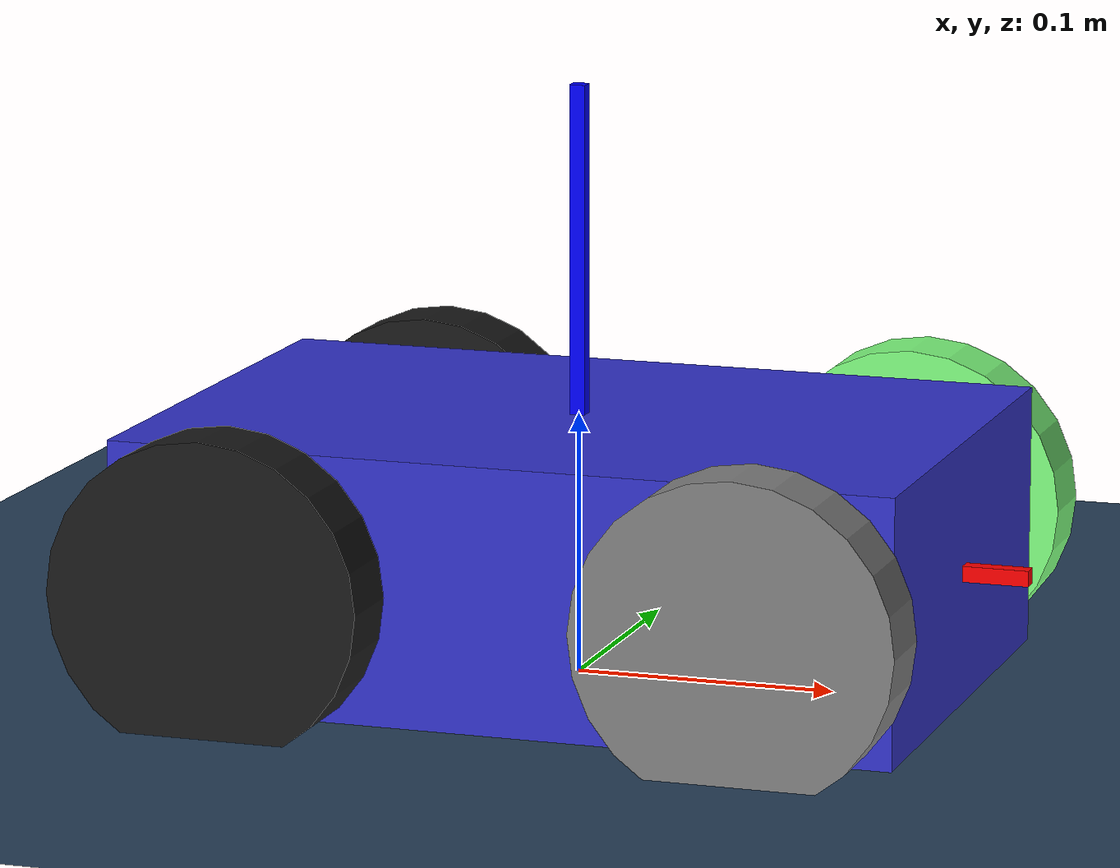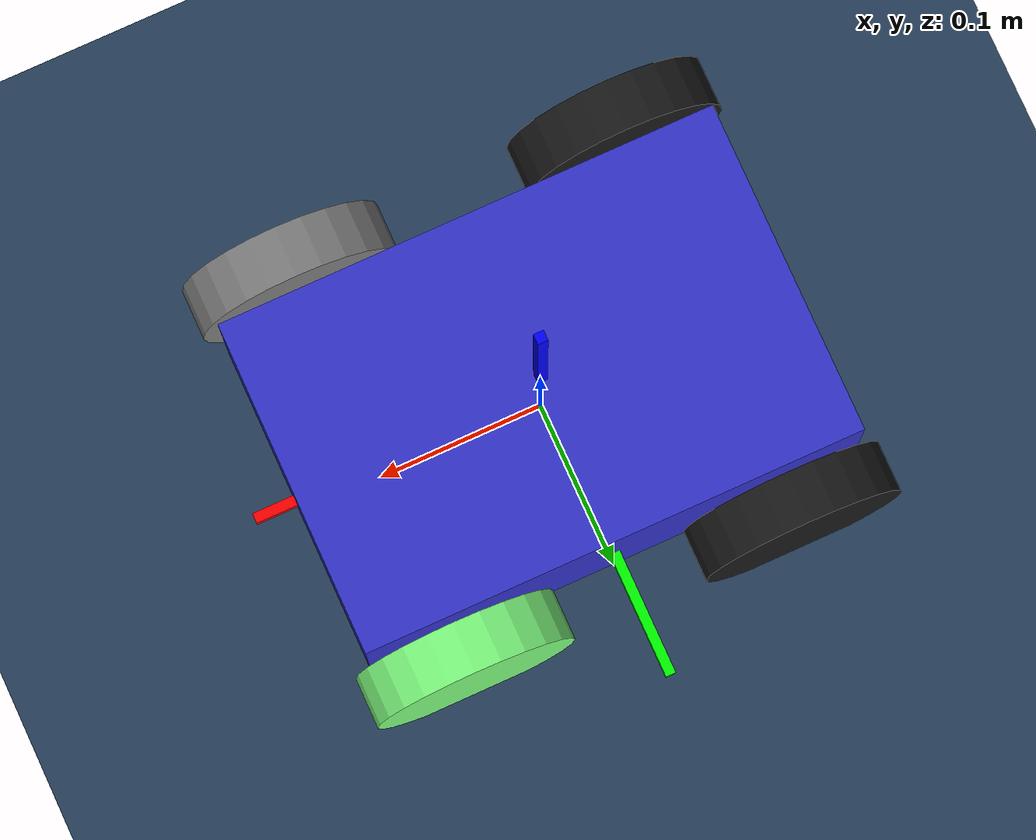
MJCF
<mujoco model="robot scene">

    <include file="base.xml"/>

    <statistic center="0 0 0.8" extent="2"/>

    <visual>
        <headlight diffuse="0.6 0.6 0.6" ambient="0.3 0.3 0.3" specular="0 0 0"/>
        <rgba haze="0.15 0.25 0.35 1"/>
        <global azimuth="120" elevation="-20"/>
    </visual>

    <asset>
        <texture type="skybox" builtin="gradient" rgb1="0.3 0.5 0.7" rgb2="0 0 0" width="512" height="3072"/>
        <texture type="2d" name="groundplane" builtin="checker" mark="edge" rgb1="0.2 0.3 0.4" rgb2="0.1 0.2 0.3"
                 markrgb="0.8 0.8 0.8" width="300" height="300"/>
        <material name="groundplane" texture="groundplane" texuniform="true" texrepeat="5 5" reflectance="0.2"/>
    </asset>

    <worldbody>
        <light pos="1 -1 1.5" dir="-1 1 -1" diffuse="0.5 0.5 0.5" directional="true"/>
        <geom name="floor" size="0 0 0.05" type="plane" material="groundplane"/>

        <body mocap="true" name="mocap" pos="0 0  0.05">
            <site pos="0 0 0.075" size="0.003 0.003 0.1" type="box" name="mocap_left_site1" rgba="0 0 1 1"/>
            <site pos="0 0.075 0" size="0.003 0.1 0.003" type="box" name="mocap_left_site2" rgba="0 1 0 1"/>
            <site pos="0.075 0 0" size="0.1 0.003 0.003" type="box" name="mocap_left_site3" rgba="1 0 0 1"/>
        </body>
    </worldbody>

    <equality>
        <weld body1="mocap" body2="base"/>
    </equality>

</mujoco>

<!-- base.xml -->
<mujoco model="4_wheel_robot_mocap">

  <compiler angle="radian" coordinate="local"/>
  <option timestep="0.01" gravity="0 0 -9.81"/>

  <asset>
  <texture name="wheel_texture" type="2d" builtin="checker" width="64" height="64"
           rgb1="0 0 0" rgb2="1 1 1" />
  <material name="wheel_mat" texture="wheel_texture" texrepeat="10 1"/>
  <texture name="wheel_texture2" type="2d" builtin="checker" width="64" height="64"
           rgb1="0 1 0" rgb2="1 2 1" />
  <material name="wheel_mat2" texture="wheel_texture2" texrepeat="10 1"/>
  </asset>

  <worldbody>

    <body name="base" pos="0 0 0.05">
      <joint name="base_free_joint" type="free"/>
      <geom type="box" size="0.15 0.1 0.05" rgba="0.2 0.2 0.8 1"/>

      <body name="front_left_wheel" pos="0.1 -0.135 0">
        <joint name="front_left_wheel_joint" type="hinge" axis="0 1 0"/>
        <geom type="cylinder" size="0.06 0.015" material="wheel_mat" fromto="0 0 0 0 0.03 0"/>
      </body>

      <body name="front_right_wheel" pos="0.1 0.105 0">
        <joint name="front_right_wheel_joint" type="hinge" axis="0 1 0"/>
        <geom type="cylinder" size="0.06 0.015" material="wheel_mat2" fromto="0 0 0 0 0.03 0"/>
      </body>

      <body name="rear_left_wheel" pos="-0.1 -0.135 0">
        <geom type="cylinder" size="0.06 0.015" fromto="0 0 0 0 0.03 0" rgba="0.1 0.1 0.1 1"/>
      </body>

      <body name="rear_right_wheel" pos="-0.1 0.105 0">
        <geom type="cylinder" size="0.06 0.015" fromto="0 0 0 0 0.03 0" rgba="0.1 0.1 0.1 1"/>
      </body>
    </body>
  </worldbody>

  <actuator>
    <motor joint="front_left_wheel_joint" ctrlrange="-1 1" ctrllimited="true"/>
    <motor joint="front_right_wheel_joint" ctrlrange="-1 1" ctrllimited="true"/>
  </actuator>

</mujoco>
